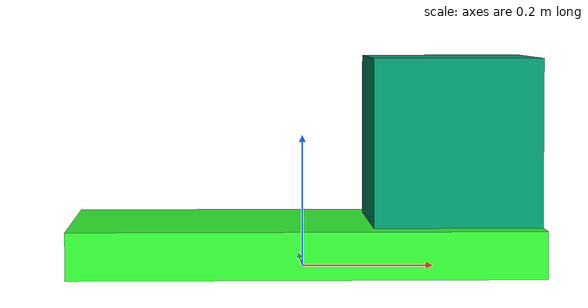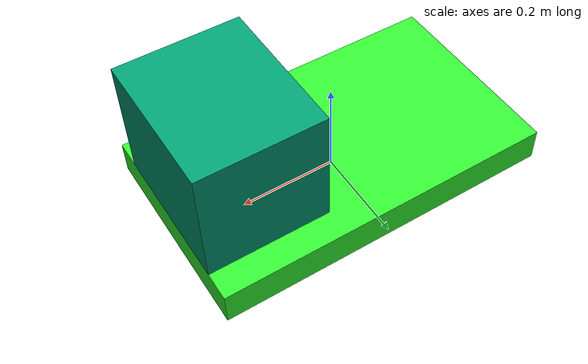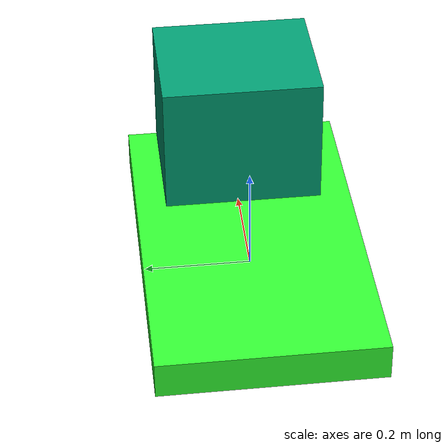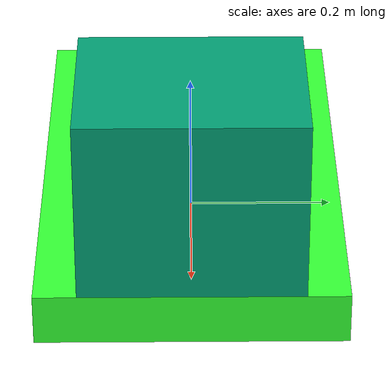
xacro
<?xml version="1.0"?>
<robot xmlns:xacro="http://www.ros.org/wiki/xacro">

    <xacro:include filename="inertial_macros.xacro"/>

    <material name="white">
        <color rgba="1.0 1.0 1.0 1.0"/>
    </material>

    <material name="orange">
        <color rgba="1.0 0.3 0.1 1.0"/>
    </material>

    <material name="blue">
        <color rgba="0.2 0.2 1.0 1.0"/>
    </material>

    <material name="black">
        <color rgba="0.0 0.0 0.0 1.0"/>
    </material>

    <material name="green">
        <color rgba="0.2 1.0 0.2 1.0"/>
    </material>

    <link name="base_link"></link>

    <joint name="base_joint" type="fixed">
        <origin xyz="0.0 0.0 0.0" rpy="0.0 0.0 0.0"/>
        <parent link="base_link"/>
        <child link="chassis_link"/>
    </joint>

    <link name="chassis_link">
        <visual>
            <origin xyz="0.0 0.0 0.035" rpy="0.0 0.0 0.0"/>
            <geometry>
                <box size="0.7 0.415 0.07"/>
            </geometry>
            <material name="green"/>
        </visual>
        <collision>
            <origin xyz="0.0 0.0 0.035" rpy="0.0 0.0 0.0"/>
            <geometry>
                <box size="0.7 0.415 0.07"/>
            </geometry>
        </collision>
        <inertial>
            <origin xyz="0.0 0.0 0.035" rpy="0.0 0.0 0.0"/>
            <mass value="12.0"/>
            <inertia ixx="2.26" ixy="0.0" ixz="0.0" iyy="6.26" iyz="0.0" izz="0.5"/>
        </inertial>
    </link>

    <!-- FRONT RIGHT WHEEL -->

    <!-- FRONT LEFT WHEEL -->

    <!-- BACK RIGHT WHEEL -->

    <!-- BACK LEFT WHEEL -->

    <!-- Lidar Mount -->

    <joint name="lidar_mount_joint" type="fixed">
        <origin xyz="0.225 0.0 0.035" rpy="0.0 0.0 0.0"/>
        <parent link="chassis_link"/>
        <child link="lidar_mount_link"/>
    </joint>

    <link name="lidar_mount_link">
        <visual>
            <origin xyz="0.0 0.0 0.16" rpy="0.0 0.0 0.0"/>
            <geometry>
                <box size="0.25 0.3 0.25"/>
            </geometry>
        </visual>
        <collision>
            <geometry>
                <box size="0.25 0.3 0.25"/>
            </geometry>
        </collision>
        <xacro:inertial_box mass="0.5" x="0.25" y="0.3" z="0.25">
            <origin xyz="0.0 0.0 0.0" rpy="0.0 0.0 0.0"/>
        </xacro:inertial_box>
    </link>

</robot>
